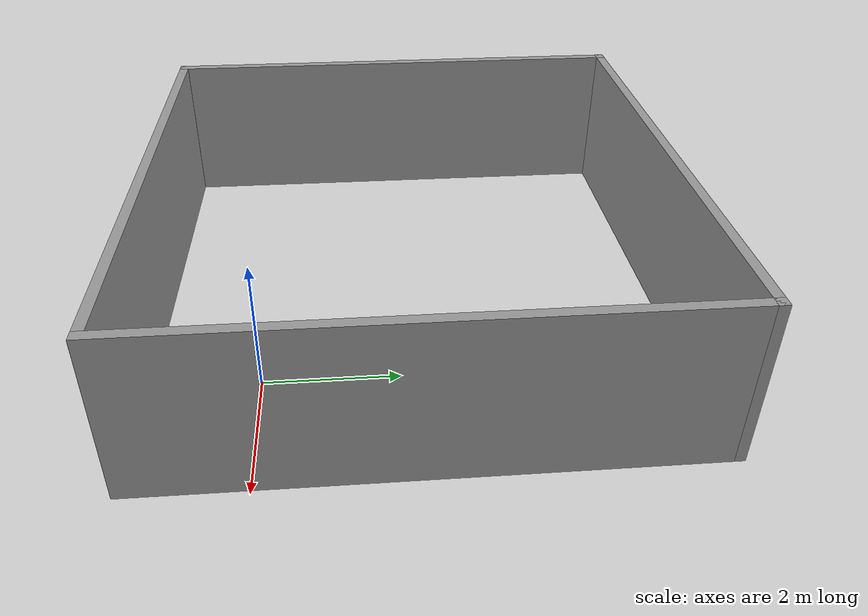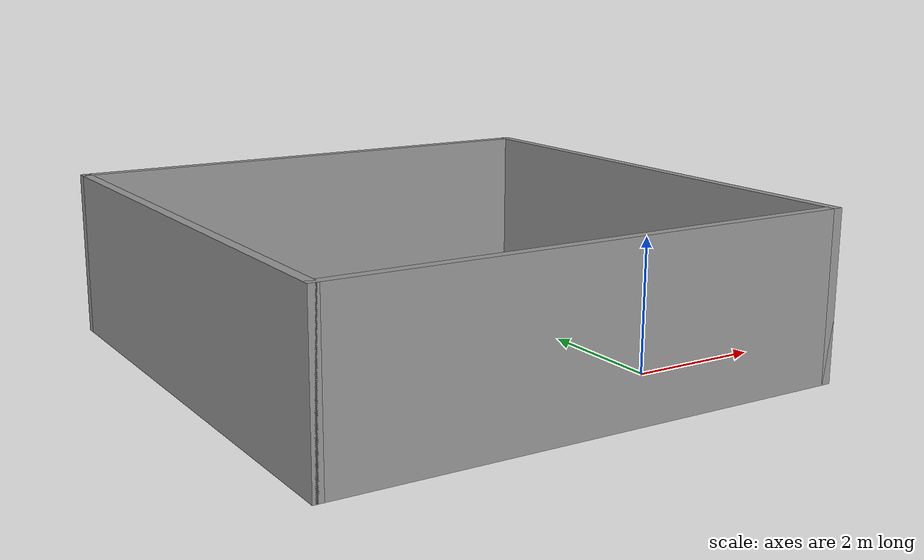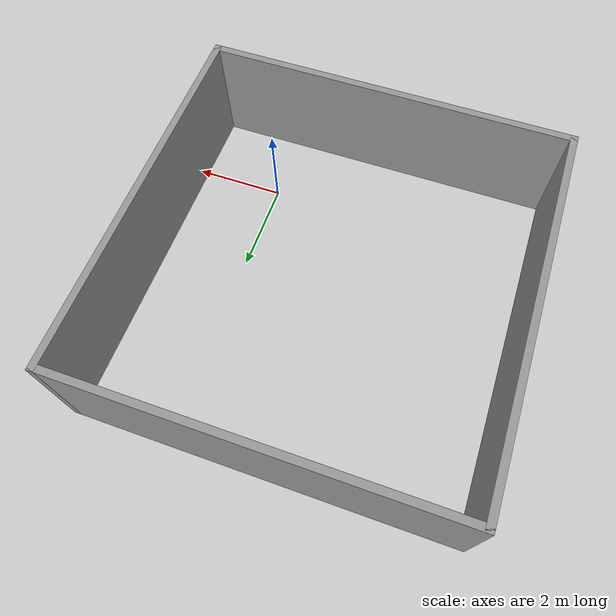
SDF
<?xml version='1.0'?>
<sdf version='1.7'>
  <model name='eight_square_meter'>
    <pose>-2.05016 2.30209 0 0 -0 0</pose>
    <link name='Wall_5'>
      <collision name='Wall_5_Collision'>
        <geometry>
          <box>
            <size>8 0.15 2.5</size>
          </box>
        </geometry>
        <pose>0 0 1.25 0 -0 0</pose>
      </collision>
      <visual name='Wall_5_Visual'>
        <pose>0 0 1.25 0 -0 0</pose>
        <geometry>
          <box>
            <size>8 0.15 2.5</size>
          </box>
        </geometry>
        <material>
          <script>
            <uri>file://media/materials/scripts/gazebo.material</uri>
            <name>Gazebo/Grey</name>
          </script>
          <ambient>1 1 1 1</ambient>
        </material>
        <meta>
          <layer>0</layer>
        </meta>
      </visual>
      <pose>0 -3.925 0 0 -0 0</pose>
    </link>
    <link name='Wall_6'>
      <collision name='Wall_6_Collision'>
        <geometry>
          <box>
            <size>8 0.15 2.5</size>
          </box>
        </geometry>
        <pose>0 0 1.25 0 -0 0</pose>
      </collision>
      <visual name='Wall_6_Visual'>
        <pose>0 0 1.25 0 -0 0</pose>
        <geometry>
          <box>
            <size>8 0.15 2.5</size>
          </box>
        </geometry>
        <material>
          <script>
            <uri>file://media/materials/scripts/gazebo.material</uri>
            <name>Gazebo/Grey</name>
          </script>
          <ambient>1 1 1 1</ambient>
        </material>
        <meta>
          <layer>0</layer>
        </meta>
      </visual>
      <pose>3.925 0 0 0 -0 1.5708</pose>
    </link>
    <link name='Wall_7'>
      <collision name='Wall_7_Collision'>
        <geometry>
          <box>
            <size>8 0.15 2.5</size>
          </box>
        </geometry>
        <pose>0 0 1.25 0 -0 0</pose>
      </collision>
      <visual name='Wall_7_Visual'>
        <pose>0 0 1.25 0 -0 0</pose>
        <geometry>
          <box>
            <size>8 0.15 2.5</size>
          </box>
        </geometry>
        <material>
          <script>
            <uri>file://media/materials/scripts/gazebo.material</uri>
            <name>Gazebo/Grey</name>
          </script>
          <ambient>1 1 1 1</ambient>
        </material>
        <meta>
          <layer>0</layer>
        </meta>
      </visual>
      <pose>0 3.925 0 0 -0 3.14159</pose>
    </link>
    <link name='Wall_8'>
      <collision name='Wall_8_Collision'>
        <geometry>
          <box>
            <size>8 0.15 2.5</size>
          </box>
        </geometry>
        <pose>0 0 1.25 0 -0 0</pose>
      </collision>
      <visual name='Wall_8_Visual'>
        <pose>0 0 1.25 0 -0 0</pose>
        <geometry>
          <box>
            <size>8 0.15 2.5</size>
          </box>
        </geometry>
        <material>
          <script>
            <uri>file://media/materials/scripts/gazebo.material</uri>
            <name>Gazebo/Grey</name>
          </script>
          <ambient>1 1 1 1</ambient>
        </material>
        <meta>
          <layer>0</layer>
        </meta>
      </visual>
      <pose>-3.925 0 0 0 -0 -1.5708</pose>
    </link>
    <static>1</static>
  </model>
</sdf>
